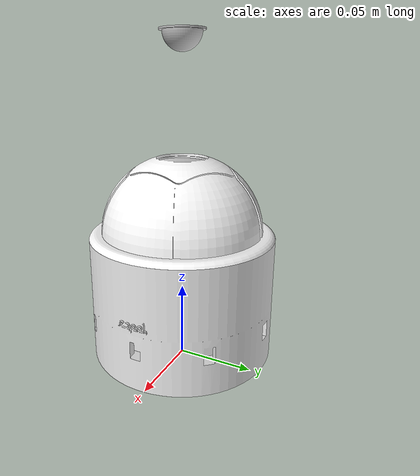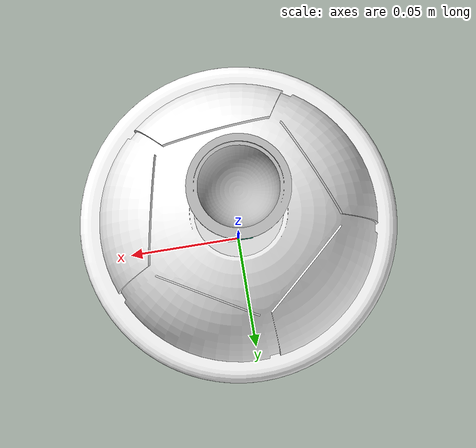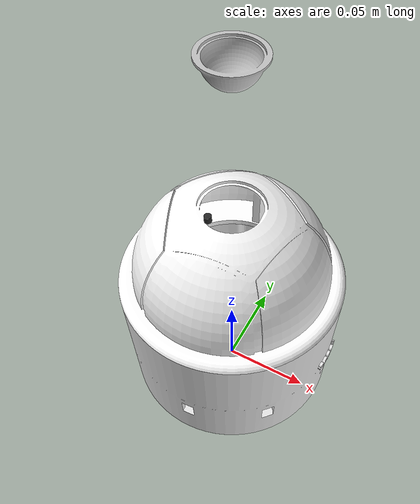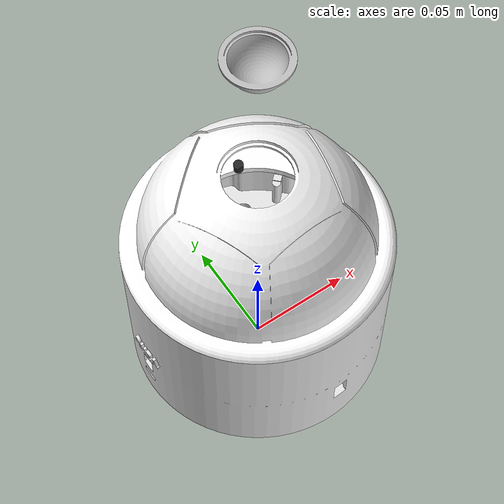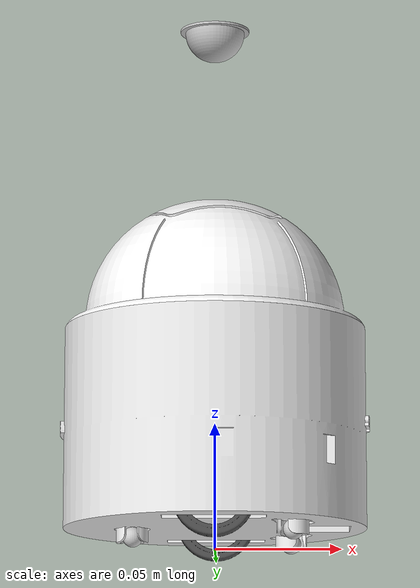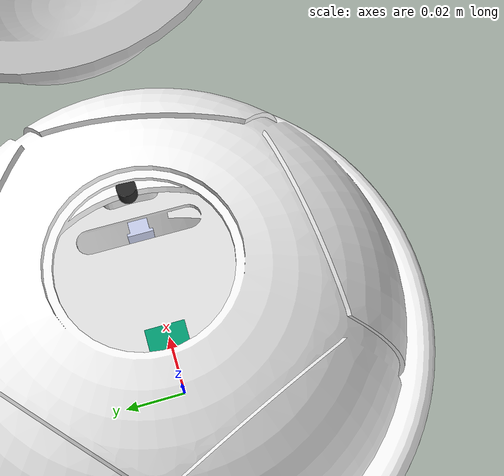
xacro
<?xml version="1.0"?>
<!-- Wrapper for the real robot (no module, no high_res camera) -->
<robot xmlns:xacro="http://www.ros.org/wiki/xacro" name="qupa">

  <xacro:arg name="tf_prefix"        default="qupa"/>
  <xacro:arg name="high_res"         default="false"/>
  <xacro:arg name="module"           default="false"/>
  <!-- Set to true only when spawning in Gazebo (loads gz-harmonic plugins) -->
  <xacro:arg name="use_sim_plugins"  default="false"/>

  <xacro:include filename="$(find qupa_description)/urdf/qupa.xacro"/>

</robot>

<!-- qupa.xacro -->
<robot xmlns:xacro="http://www.ros.org/wiki/xacro" name="$(arg tf_prefix)">

    <xacro:property name="M_PI" value="3.1415926535897931" />
    <xacro:property name="tf_prefix"       value="$(arg tf_prefix)"/>
    <xacro:property name="high_res"        value="$(arg high_res)"        lazy_eval="false"/>
    <xacro:property name="module"          value="$(arg module)"          lazy_eval="false"/>
    <xacro:property name="use_sim_plugins" value="$(arg use_sim_plugins)" lazy_eval="false"/>
    <xacro:property name="base_height" value="0.0" />
    <xacro:property name="mirror_height" value="${base_height + 0.2}" />
    <!-- IR ring inset: <1 pulls the IR sensors radially INWARD (more recessed
         into the body). 1.0 = original edge position; 0.82 ≈ 1 cm inward. -->
    <xacro:property name="ir_inset_scale" value="0.82" />
    <!--Include Xacro files -->
    <xacro:include filename="$(find qupa_description)/urdf/wheels/wheel.xacro" />                   <!--wheel properties and links definitions-->
    <xacro:include filename="$(find qupa_description)/urdf/sensors/infrared.xacro" />               <!--infrared sensor properties and links definitions-->
    <xacro:include filename="$(find qupa_description)/urdf/sensors/mirror.xacro" />                 <!--logical camera properties and links definitions, the mirror acts as a 'camera'-->
    <xacro:include filename="$(find qupa_description)/urdf/bases/module.xacro" />
    <xacro:include filename="$(find qupa_description)/urdf/bases/base.xacro" />                     <!--base properties and links definitions-->
    <xacro:include filename="$(find qupa_description)/urdf/gazebo_plugins.xacro" />                 <!--Gazebo plugins definitions-->
    <xacro:include filename="$(find qupa_description)/urdf/sensors/color.xacro" />
    <xacro:include filename="$(find qupa_description)/urdf/sensors/led.xacro" />
    <xacro:include filename="$(find qupa_description)/urdf/wheels/caster.xacro" />

    <material name="dark">
        <color rgba="0.3 0.3 0.3 1.0"/>
    </material>
    <material name="light_black">
        <color rgba="0.4 0.4 0.4 1.0"/>
    </material>
    <material name="gray">
        <color rgba="0.4 0.4 0.4 1.0"/>
    </material>

    <!--Base Macro-->
    <xacro:if value="${module}">
        <!--Xacro properties changes-->
        <xacro:property name="base_height" value="0.04" />

        <xacro:module/>               <!--Module Base-->

        <!--Links-->
        <xacro:link_1
            prefix="Left"
            parent_link="${tf_prefix}/base_link"
            xyz="0.042536 0.012084 0.0782"
            rpy="0 0 0.55"/>
        <xacro:link_1
            prefix="Right"
            parent_link="${tf_prefix}/base_link"
            xyz="0.042536 -0.012116 0.0782"
            rpy="0 0 -0.43481"/>
        <xacro:link_2
            xyz="0.030029 -1.8353E-05 0.0055"
            rpy="0 0 -0.82341"/>
        <xacro:link_3
            xyz="0.030031 1.4561E-05 0.0035"
            rpy="0 0 0.76626"/>
        <xacro:EE/>

        <!--Transmissions-->
        <xacro:transmission_effort  name="trans_motor_left_link_1"
                                    joint_name="Left_joint_1"
                                    actuator_name="left_motor"/>

        <xacro:transmission_effort  name="trans_motor_right_link_1"
                                    joint_name="Right_joint_1"
                                    actuator_name="right_motor"/>

        <xacro:transmission_passive name="left_link_1_left_link_2"
                                    joint_name="Left_joint_2"
                                    actuator_name="left_1to2"/>

        <xacro:transmission_passive name="right_link_1_right_link_2"
                                    joint_name="Right_joint_2"
                                    actuator_name="right_1to2"/>

        <xacro:transmission_effort  name="end_effector_motor"
                                    joint_name="EE_joint"
                                    actuator_name="ee_motor"/>

        <!--plugin-->
        <gazebo>
            <plugin name="gazebo_ros_control" filename="libgazebo_ros_control.so">
                <robotNamespace>$(arg tf_prefix)</robotNamespace>
                <robotSimType>gazebo_ros_control/ClosedLoopHWSim</robotSimType>
            </plugin>
        </gazebo>

    </xacro:if>

    <xacro:unless value="${module}">
        <xacro:base/>                   <!--Normal Base-->
    </xacro:unless>
    <xacro:mirror/>                     <!--Mirror Macro-->

    <!-- Wheels Macro-->
    <xacro:wheel
        wheel_name="${tf_prefix}/R_wheel"
        wheel_joint_name="R_wheel_joint"
        wheel_parent_name="${tf_prefix}/base_link"
        wheel_joint_origin_xyz="-0 0.0415 0.016"
        wheel_joint_origin_rpy=" 1.5708 0 3.1416" />
    <xacro:wheel
        wheel_name="${tf_prefix}/L_wheel"
        wheel_joint_name="L_wheel_joint"
        wheel_parent_name="${tf_prefix}/base_link"
        wheel_joint_origin_xyz="0 -0.0415 0.016"
        wheel_joint_origin_rpy=" 1.5708 0 0" />
    <xacro:caster
        link_name = "${tf_prefix}/caster_R"
        joint_name = "caster_R_joint"
        joint_origin_xyz = "0.0305 -0.0265 0.005"/>
    <xacro:caster
        link_name = "${tf_prefix}/caster_L"
        joint_name = "caster_L_joint"
        joint_origin_xyz = "0.0305 0.0265 0.005"/>
    <xacro:caster
        link_name = "${tf_prefix}/caster_B"
        joint_name = "caster_B_joint"
        joint_origin_xyz = "-0.0325 0 0.005"/>

    <xacro:infrared
        joint_origin_xyz="0.00 0 0.034"
        joint_origin_rpy="1.5708 0 0" />

    <xacro:ir_sensor link_name="ir_0"
        joint_name="ir_0_joint"
        joint_origin_xyz="${0.004*ir_inset_scale} ${-0.056*ir_inset_scale} 0.034"
        joint_origin_rpy="${M_PI/2} 0 0" />

    <xacro:ir_sensor link_name="ir_45"
        joint_name="ir_45_joint"
        joint_origin_xyz="${0.04159*ir_inset_scale} ${-0.0376*ir_inset_scale} 0.034"
        joint_origin_rpy="${M_PI/2} 0 ${M_PI/4}" />

    <xacro:ir_sensor link_name="ir_90"
        joint_name="ir_90_joint"
        joint_origin_xyz="${0.056*ir_inset_scale} 0 0.034"
        joint_origin_rpy="${M_PI/2} 0 ${M_PI/2}" />

    <xacro:ir_sensor link_name="ir_135"
        joint_name="ir_135_joint"
        joint_origin_xyz="${0.04159*ir_inset_scale} ${0.0376*ir_inset_scale} 0.034"
        joint_origin_rpy="${M_PI/2} 0 ${3*M_PI/4}" />

    <xacro:ir_sensor link_name="ir_180"
        joint_name="ir_180_joint"
        joint_origin_xyz="${0.004*ir_inset_scale} ${0.056*ir_inset_scale} 0.034"
        joint_origin_rpy="${M_PI/2} 0 ${M_PI}" />

    <xacro:ir_sensor link_name="ir_270"
        joint_name="ir_270_joint"
        joint_origin_xyz="${-0.056*ir_inset_scale} 0 0.034"
        joint_origin_rpy="${M_PI/2} 0 ${-M_PI/2}" />

    <!-- Floor colour sensor — always present regardless of camera mode -->
    <xacro:color_camera/>

    <!-- LED ring — 5 point lights on the dome -->
    <xacro:led_ring/>

    <xacro:if value="${high_res}">
        <xacro:real_cam/>
    </xacro:if>
    <xacro:unless value="${high_res}">
        <xacro:log_cam/>            <!--Logical Camera Macro-->
    </xacro:unless>

  </robot>

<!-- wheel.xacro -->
<robot xmlns:xacro="http://www.ros.org/wiki/xacro" name="$(arg tf_prefix)">

    <!--Xacro Wheel Dynamics Properties-->
    <xacro:property name="wheel_friction_mu" value="1.0" />
    <xacro:property name="wheel_friction_mu2" value="1.0" />
    <xacro:property name="contact_kp" value="100000.0" />
    <xacro:property name="contact_kd" value="10.0" />
    <xacro:property name="max_contact_vel" value="0.1" />
    <xacro:property name="min_contact_depth" value="0.01" />
    <xacro:property name="joint_effort" value="10" />
    <xacro:property name="wheel_damping" value="0.7" />
    <xacro:property name="wheel_friction" value="0.5" />
    <xacro:property name="scale" value="0.0010 0.0010 0.001"/>

    <xacro:macro name="wheel"
    params="wheel_name
            wheel_joint_name
            wheel_parent_name
            wheel_joint_origin_xyz
            wheel_joint_origin_rpy">

    <link name="${wheel_name}">
      <inertial>
            <origin
            xyz="-0.000 0.000017 0.000973"
            rpy="0 0 0" />
            <mass value="0.001" />
            <inertia
            ixx="4.5674E-07"
            ixy="5.7632E-11"
            ixz="-2.5373E-15"
            iyy="2.392E-07"
            iyz="4.8406E-12"
            izz="2.39E-07" />
        </inertial>
      <visual>
        <origin xyz="0 0 0.001" rpy="0 0 0" />
        <geometry>
          <mesh filename="package://qupa_description/meshes/wheel.dae" scale="${scale}"/>
        </geometry>
      <material name="dark"/>
      </visual>
      <collision>
        <origin xyz="0 0 0" rpy="0 0 0" />
        <geometry>
          <cylinder radius="0.016" length="0.006"/>
        </geometry>
      </collision>
    </link>
    <joint name="${wheel_joint_name}" type="continuous">
      <origin xyz="${wheel_joint_origin_xyz}" rpy="${wheel_joint_origin_rpy}" />
      <parent link="${wheel_parent_name}" />
      <child link="${wheel_name}" />
      <xacro:if value="${wheel_joint_name == 'L_wheel_joint'}">
        <axis xyz="0 0 -1" />
      </xacro:if>
      <xacro:unless value="${wheel_joint_name == 'L_wheel_joint'}">
        <axis xyz="0 0 1" />
      </xacro:unless>
      <limit effort="${joint_effort}" velocity="1.0" lower="-1000.0" upper="1000.0" />
      <dynamics damping="${wheel_damping}" friction="${wheel_friction}" />
    </joint>
    <gazebo reference="${wheel_name}">
      <collision>
        <surface>
          <friction>
            <ode>
              <mu>${wheel_friction_mu}</mu>
              <mu2>${wheel_friction_mu2}</mu2>
            </ode>
          </friction>
          <contact>
            <ode>
              <kp>${contact_kp}</kp>
              <kd>${contact_kd}</kd>
              <max_vel>${max_contact_vel}</max_vel>
              <min_depth>${min_contact_depth}</min_depth>
            </ode>
          </contact>
        </surface>
      </collision>
    </gazebo>
  </xacro:macro>
</robot>

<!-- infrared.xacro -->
<robot xmlns:xacro="http://www.ros.org/wiki/xacro" name="$(arg tf_prefix)">

  <!-- Individual IR sensor visual (one per physical sensor position) -->
  <xacro:macro name="ir_sensor" params="link_name joint_name
                                        joint_origin_xyz joint_origin_rpy">
    <link name="$(arg tf_prefix)/${link_name}">
      <inertial>
        <mass value="0.01"/>
        <inertia ixx="1e-6" ixy="0" ixz="0" iyy="1e-6" iyz="0" izz="1e-6"/>
      </inertial>
      <visual>
        <origin xyz="0 0 0" rpy="0 0 0" />
        <geometry>
          <mesh filename="package://qupa_description/meshes/infrared.dae" />
        </geometry>
        <material name="sensor_material">
          <color rgba="0.79216 0.81961 0.93333 1" />
        </material>
      </visual>
    </link>
    <joint name="${joint_name}" type="fixed">
      <origin xyz="${joint_origin_xyz}" rpy="${joint_origin_rpy}" />
      <parent link="$(arg tf_prefix)/base_link" />
      <child link="$(arg tf_prefix)/${link_name}" />
      <axis xyz="0 0 0" />
    </joint>
  </xacro:macro>

  <xacro:macro name="infrared" params="joint_origin_xyz joint_origin_rpy">

    <link name="$(arg tf_prefix)/infrared_link">
      <inertial>
        <mass value="0.0001"/>
        <inertia ixx="1e-6" ixy="0" ixz="0" iyy="1e-6" iyz="0" izz="1e-6"/>
      </inertial>
      <visual>
        <geometry><box size="0.01 0.01 0.01"/></geometry>
        <material name="gray"><color rgba="0.5 0.5 0.5 1"/></material>
      </visual>
      <collision>
        <geometry><box size="0.01 0.01 0.01"/></geometry>
      </collision>
    </link>

    <joint name="infrared_joint" type="fixed">
      <origin xyz="${joint_origin_xyz}" rpy="${joint_origin_rpy}" />
      <parent link="$(arg tf_prefix)/base_link" />
      <child link="$(arg tf_prefix)/infrared_link" />
      <axis xyz="0 0 0" />
    </joint>

    <!-- Gazebo Harmonic: GPU-lidar sensor (gz::sim::systems::Sensors required in world) -->
    <xacro:if value="${use_sim_plugins}">
      <gazebo reference="$(arg tf_prefix)/infrared_link">
        <sensor name="$(arg tf_prefix)_infrared" type="gpu_lidar">
          <!--
            Pose inside the sensor rotates the scan plane so that rays are
            horizontal (parallel to XY of base_link), matching real hardware.
          -->
          <pose>0 0 0 1.5708 0 0</pose>
          <!-- gz-transport topic (bridged to ROS by ros_gz_bridge) -->
          <topic>/$(arg tf_prefix)/scan</topic>
          <update_rate>10</update_rate>
          <gz_frame_id>$(arg tf_prefix)/infrared_link</gz_frame_id>
          <lidar>
            <scan>
              <horizontal>
                <samples>9</samples>
                <resolution>1</resolution>
                <min_angle>0</min_angle>
                <max_angle>6.28318530718</max_angle>
              </horizontal>
            </scan>
            <range>
              <min>0.08</min>   <!-- 12 cm — clears robot body (~6 cm radius) -->
              <max>0.50</max>   <!-- 50 cm -->
              <resolution>0.01</resolution>
            </range>
            <noise>
              <type>gaussian</type>
              <mean>0.0</mean>
              <stddev>0.005</stddev>
            </noise>
          </lidar>
          <always_on>true</always_on>
          <visualize>true</visualize>
        </sensor>
      </gazebo>
    </xacro:if>

  </xacro:macro>

</robot>

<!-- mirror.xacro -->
<robot xmlns:xacro="http://www.ros.org/wiki/xacro" name="$(arg tf_prefix)">

    <xacro:property name="camera_height" value="0.20" />

    <xacro:macro name="mirror">
        <link name="$(arg tf_prefix)/mirror_link">
            <inertial>
                <origin xyz="0 0.0072703 1.0408E-17" rpy="0 0 0" />
                <mass value="0.00099484" />
                <inertia ixx="5.9879E-08" ixy="4.6719E-24" ixz="2.2618E-23"
                         iyy="1.0131E-07" iyz="-1.9251E-23" izz="5.9879E-08" />
            </inertial>
            <visual>
                <origin xyz="0 0 0" rpy="0 0 0" />
                <geometry>
                    <mesh filename="package://qupa_description/meshes/mirror.stl" />
                </geometry>
                <material name="">
                    <color rgba="0.74902 0.74902 0.74902 1" />
                </material>
            </visual>
        </link>

        <joint name="mirror_joint" type="fixed">
            <origin xyz="0 0 ${mirror_height}" rpy="1.5708 0 0" />
            <parent link="$(arg tf_prefix)/base_link" />
            <child link="$(arg tf_prefix)/mirror_link" />
            <axis xyz="1 0 0" />
        </joint>
    </xacro:macro>

    <xacro:macro name="log_cam">
        <link name="$(arg tf_prefix)/logical_camera_link">
            <inertial>
                <mass value="0.001" />
                <origin xyz="0 0 0" rpy="0 0 0" />
                <inertia ixx="1.875e-8" ixy="0.0" ixz="0.0"
                         iyy="1.875e-8" iyz="0.0" izz="1.25e-8" />
            </inertial>
            <collision>
                <origin xyz="0 0 0" rpy="0 0 0" />
                <geometry><cylinder radius="0.005" length="0.01"/></geometry>
            </collision>
        </link>

        <joint name="logical_camera_joint" type="fixed">
            <parent link="$(arg tf_prefix)/base_link" />
            <child link="$(arg tf_prefix)/logical_camera_link" />
            <origin xyz="0 0 ${camera_height}" rpy="0 1.5708 0" />
        </joint>

        <!-- Gazebo Harmonic: logical_camera sensor (no rendering, no GPU needed) -->
        <xacro:if value="${use_sim_plugins}">
            <gazebo reference="$(arg tf_prefix)/logical_camera_link">
                <sensor name="$(arg tf_prefix)_mirror" type="logical_camera">
                    <logical_camera>
                        <near>0.04</near>
                        <far>0.20</far>
                        <horizontal_fov>2.5</horizontal_fov>
                        <aspect_ratio>1.0</aspect_ratio>
                    </logical_camera>
                    <visualize>false</visualize>
                    <always_on>true</always_on>
                    <update_rate>20</update_rate>
                    <topic>/$(arg tf_prefix)/logical_camera</topic>
                </sensor>
            </gazebo>
        </xacro:if>
    </xacro:macro>

    <xacro:macro name="real_cam">
        <link name="$(arg tf_prefix)/camera_link">
            <inertial>
                <mass value="0.001" />
                <origin xyz="0 0 0" rpy="0 0 0" />
                <inertia ixx="1.875e-8" ixy="0.0" ixz="0.0"
                         iyy="1.875e-8" iyz="0.0" izz="1.25e-8" />
            </inertial>
            <collision>
                <origin xyz="0 0 0" rpy="0 0 0" />
                <geometry><cylinder radius="0.005" length="0.01"/></geometry>
            </collision>
        </link>

        <!--
            Joint at camera_height (0.20 m) pointing upward toward the mirror.
            rpy="0 1.5708 0" rotates the link so the camera faces the mirror.
        -->
        <joint name="camera_joint" type="fixed">
            <parent link="$(arg tf_prefix)/base_link" />
            <child link="$(arg tf_prefix)/camera_link" />
            <origin xyz="0 0 ${camera_height}" rpy="0 1.5708 0" />
        </joint>

        <!-- Gazebo Harmonic: wideanglecamera sensor (requires ogre2 rendering) -->
        <xacro:if value="${use_sim_plugins}">
            <gazebo reference="$(arg tf_prefix)/camera_link">
                <sensor name="$(arg tf_prefix)_camera" type="wideanglecamera">
                    <camera>
                        <!-- 360° horizontal FOV — full surround view like the mirror -->
                        <!-- SDF max is 2π = 6.28318…; 6.2832 exceeds it by rounding -->
                        <horizontal_fov>6.28318</horizontal_fov>
                        <image>
                            <width>720</width>
                            <height>720</height>
                            <format>R8G8B8</format>
                        </image>
                        <clip>
                            <near>0.05</near>
                            <far>5.0</far>
                        </clip>
                        <lens>
                            <type>custom</type>
                            <custom_function>
                                <c1>1.05</c1>   <!-- radial scaling -->
                                <c2>3.0</c2>    <!-- angle scaling  -->
                                <f>1.0</f>      <!-- offset         -->
                                <fun>tan</fun>  <!-- projection: tan, sin or id -->
                            </custom_function>
                            <!-- Keep horizontal_fov as defined above -->
                            <scale_to_hfov>true</scale_to_hfov>
                            <!-- Clip rays beyond this half-angle (≈143°) -->
                            <cutoff_angle>2.5</cutoff_angle>
                            <!-- Cubemap resolution — trade-off: quality vs GPU cost -->
                            <env_texture_size>512</env_texture_size>
                        </lens>
                    </camera>
                    <always_on>true</always_on>
                    <update_rate>10</update_rate>  <!-- real node runs at 3 Hz; 10 Hz gives margin -->
                    <!-- gz-transport topic consumed by camera_sim_node via gz-transport Python -->
                    <topic>/$(arg tf_prefix)/camera/image_raw</topic>
                    <gz_frame_id>$(arg tf_prefix)/camera_link</gz_frame_id>
                </sensor>
            </gazebo>
        </xacro:if>
    </xacro:macro>

</robot>

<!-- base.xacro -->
<robot xmlns:xacro="http://www.ros.org/wiki/xacro">

    <xacro:property name="base_mass" value="1" />
    <xacro:property name="base_scale" value="1 1 1" />

    <!-- Real robot is white -->
    <material name="white">
        <color rgba="0.9 0.9 0.9 1.0" />
    </material>

    <!-- Acrylic dome: WHITE translucent diffuser the LEDs glow through.
         acrylic_alpha: 0 = invisible, 1 = fully opaque. Lower = lighter/clearer. -->
    <xacro:property name="acrylic_alpha" value="0.90" />
    <material name="acrylic">
        <color rgba="1.0 1.0 1.0 ${acrylic_alpha}" />
    </material>

    <xacro:macro name="base">

        <link name="$(arg tf_prefix)/base_link">
            <inertial>
                <origin xyz="0 0 0" rpy="0 0 0" />
                <mass value="${base_mass}" />
                <inertia
                    ixx="0.01423"
                    ixy="0"
                    ixz="0"
                    iyy="0.01423"
                    iyz="0"
                    izz="0.00180" />
                </inertial>
            <!-- Body shell (opaque). The acrylic dome lives on its OWN link
                 (acrylic_dome_link, below) so led_sim_node can drive its
                 emissive colour by a clean, stable visual name. -->
            <visual name="base_body">
                <origin xyz="0 0 0" rpy="0 0 0" />
                <geometry>
                    <mesh filename="package://qupa_description/meshes/base.stl" scale="${base_scale}" />
                </geometry>
                <material name="white" />
            </visual>
            <collision>
                <origin xyz="0 0 0" rpy="0 0 0" />
                <geometry>
                    <mesh filename="package://qupa_description/meshes/base.stl" scale="${base_scale}" />
                </geometry>
                <self_collide>false</self_collide>
            </collision>
        </link>

        <link name="$(arg tf_prefix)/acrylic_dome_link">
            <inertial>
                <mass value="1e-5" />
                <origin xyz="0 0 0" rpy="0 0 0" />
                <inertia ixx="1e-9" ixy="0" ixz="0"
                         iyy="1e-9" iyz="0" izz="1e-9" />
            </inertial>
            <visual>
                <origin xyz="0 0 0" rpy="0 0 0" />
                <geometry>
                    <mesh filename="package://qupa_description/meshes/dome.stl" scale="${base_scale}" />
                </geometry>
                <material name="acrylic" />
            </visual>
        </link>

        <joint name="acrylic_dome_joint" type="fixed">
            <parent link="$(arg tf_prefix)/base_link" />
            <child  link="$(arg tf_prefix)/acrylic_dome_link" />
            <origin xyz="0 0 0" rpy="0 0 0" />
        </joint>

        <gazebo reference="acrylic_dome_joint">
            <disableFixedJointLumping>true</disableFixedJointLumping>
            <preserveFixedJoint>true</preserveFixedJoint>
        </gazebo>

        <joint name="imu_joint" type="fixed">
            <parent link="$(arg tf_prefix)/base_link"/>
            <child link="$(arg tf_prefix)/imu_link"/>
            <origin xyz="0.0 0 0.07" rpy="0 0 0"/>
        </joint>

        <link name="$(arg tf_prefix)/imu_link">
            <inertial>
                <mass value="0.05"/>
                <inertia ixx="0.000001" ixy="0" ixz="0"
                        iyy="0.000001" iyz="0"
                        izz="0.000001"/>
            </inertial>
            <visual>
                <geometry>
                    <box size="0.01 0.01 0.01"/>
                </geometry>
            </visual>
            <collision>
                <geometry>
                    <box size="0.01 0.01 0.01"/>
                </geometry>
            </collision>
        </link>

    </xacro:macro>
</robot>

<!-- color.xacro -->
<robot xmlns:xacro="http://www.ros.org/wiki/xacro" name="$(arg tf_prefix)">

  <xacro:macro name="color_camera">

    <link name="$(arg tf_prefix)/color_camera_link">
      <!-- Intentionally massless / collision-less — visual sensor only -->
    </link>

    <joint name="color_camera_joint" type="fixed">
      <origin xyz="-0.043 0 0.009" rpy="0 0 0" />
      <parent link="$(arg tf_prefix)/base_link" />
      <child  link="$(arg tf_prefix)/color_camera_link" />
      <axis   xyz="0 0 1" />
    </joint>

    <!-- Gazebo Harmonic: downward-facing camera + LED light (simulation only) -->
    <xacro:if value="${use_sim_plugins}">
      <gazebo reference="$(arg tf_prefix)/color_camera_link">

        <light name="$(arg tf_prefix)_floor_led" type="point">
          <pose>0 0 0 0 0 0</pose>
          <diffuse>1.0 1.0 1.0 1</diffuse>     <!-- white, neutral -->
          <specular>0.0 0.0 0.0 1</specular>    <!-- no specular — avoid reflections -->
          <attenuation>
            <range>0.12</range>       <!-- 12 cm — only illuminates the floor patch -->
            <constant>0.8</constant>
            <linear>0.2</linear>
            <quadratic>0.05</quadratic>
          </attenuation>
          <cast_shadows>false</cast_shadows>    <!-- no shadows from such a close light -->
        </light>

        <!--
          Camera sensor — looks straight down (-Z world).
          In Gazebo Harmonic the camera looks along its local +X axis.
          Pitch +π/2 rotates +X → -Z (downward).
        -->
        <sensor name="$(arg tf_prefix)_floor_camera" type="camera">
          <pose>0 0 0 0 1.5708 0</pose>
          <camera>
            <horizontal_fov>1.0</horizontal_fov>
            <image>
              <width>32</width>
              <height>32</height>
              <format>R8G8B8</format>
            </image>
            <clip>
              <near>0.005</near>
              <far>0.15</far>   <!-- SDF minimum is 0.10 m; 0.15 m clears the floor comfortably -->
            </clip>
          </camera>
          <always_on>true</always_on>
          <update_rate>5</update_rate>
          <topic>/$(arg tf_prefix)/floor_camera/image_raw</topic>
          <gz_frame_id>$(arg tf_prefix)/color_camera_link</gz_frame_id>
        </sensor>

      </gazebo>
    </xacro:if>

  </xacro:macro>

</robot>

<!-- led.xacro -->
<robot xmlns:xacro="http://www.ros.org/wiki/xacro">

  <xacro:property name="led_height" value="0.10"  />  <!-- m above base_link -->
  <xacro:property name="led_radius" value="0.03" />  <!-- m from z-axis     -->

  <!-- ── Single LED link ──────────────────────────────────────────────── -->
  <xacro:macro name="led_link" params="idx angle_deg">

    <!-- World-frame position at spawn time -->
    <xacro:property name="led_x"
      value="${led_radius * cos(angle_deg * M_PI / 180.0)}" />
    <xacro:property name="led_y"
      value="${led_radius * sin(angle_deg * M_PI / 180.0)}" />

    <link name="$(arg tf_prefix)/led_${idx}_link">
      <!-- Tiny inertia so the preserved (non-lumped) link is valid for gz-sim -->
      <inertial>
        <mass value="1e-5" />
        <origin xyz="0 0 0" rpy="0 0 0" />
        <inertia ixx="1e-9" ixy="0.0" ixz="0.0"
                 iyy="1e-9" iyz="0.0" izz="1e-9" />
      </inertial>
      <visual>
        <origin xyz="0 0 0" rpy="0 0 0" />
        <geometry>
          <!-- Small cylinder — represents the LED lens -->
          <cylinder radius="0.0022" length="0.004" />
        </geometry>
        <material name="led_off">
          <color rgba="0.15 0.15 0.15 1" />
        </material>
      </visual>
      <!-- No collision — purely visual -->
    </link>

    <joint name="led_${idx}_joint" type="fixed">
      <parent link="$(arg tf_prefix)/base_link" />
      <child  link="$(arg tf_prefix)/led_${idx}_link" />
      <origin xyz="${led_x} ${led_y} ${led_height}" rpy="0 0 0" />
    </joint>

    <gazebo reference="led_${idx}_joint">
      <disableFixedJointLumping>true</disableFixedJointLumping>
      <preserveFixedJoint>true</preserveFixedJoint>
    </gazebo>

    <!-- ── How the LED is lit at runtime ───────────────────────────── -->

  </xacro:macro>

  <!-- ── Full 5-LED ring ──────────────────────────────────────────────── -->
  <xacro:macro name="led_ring">
    <xacro:led_link idx="0" angle_deg="0"   />   <!-- front       -->
    <xacro:led_link idx="1" angle_deg="72"  />   <!-- front-left  -->
    <xacro:led_link idx="2" angle_deg="144" />   <!-- rear-left   -->
    <xacro:led_link idx="3" angle_deg="216" />   <!-- rear-right  -->
    <xacro:led_link idx="4" angle_deg="288" />   <!-- front-right -->
  </xacro:macro>

</robot>

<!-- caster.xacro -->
<robot xmlns:xacro="http://www.ros.org/wiki/xacro" name="$(arg tf_prefix)">

  <xacro:property name="caster_mass" value="0.00005" />
  <xacro:property name="caster_scale" value="0.80 0.80 0.80" />

   <xacro:macro name="caster" params="link_name joint_name joint_origin_xyz ">
    <!-- Caster Link -->
    <link name="${link_name}">
      <inertial>
        <origin xyz="0.0 0.0 0.0" rpy="0 0 0" />
        <mass value="${caster_mass}"/>
        <inertia ixx="0.0001" ixy="0.0" ixz="0.0"
                iyy="0.0001" iyz="0.0"
                izz="0.0001"/>
      </inertial>
      <visual>
        <origin xyz="0 0 0" rpy="0 0 0" />
        <geometry>
          <mesh filename="package://qupa_description/meshes/caster.dae" scale="${caster_scale}"/>
        </geometry>
      </visual>
      <collision>
        <origin xyz="0 0 0" rpy="0 0 0" />
        <geometry>
          <mesh filename="package://qupa_description/meshes/caster.dae" scale="${caster_scale}"/>
        </geometry>
      </collision>
    </link>
    <!-- Joint de la rueda -->
    <joint name="${joint_name}" type="fixed">
      <origin xyz="${joint_origin_xyz}" rpy="0 0 0" />
      <parent link="$(arg tf_prefix)/base_link" />
      <child link="${link_name}" />
    </joint>

    <gazebo reference="${link_name}">
      <collision>
        <surface>
          <friction>
            <ode>
              <mu>0.1</mu>
              <mu2>0.1</mu2>
            </ode>
          </friction>
          <contact>
            <ode>
              <kp>1000000.0</kp>
              <kd>100.0</kd>
              <min_depth>0.001</min_depth>
              <max_vel>1.0</max_vel>
            </ode>
          </contact>
        </surface>
      </collision>
    </gazebo>
  </xacro:macro>
</robot>
